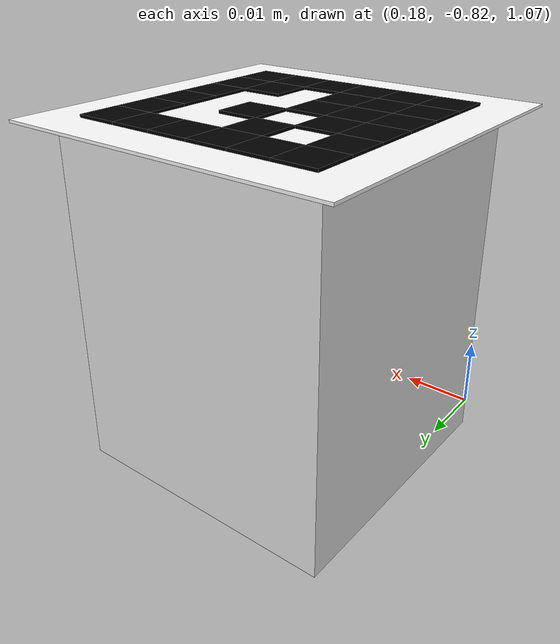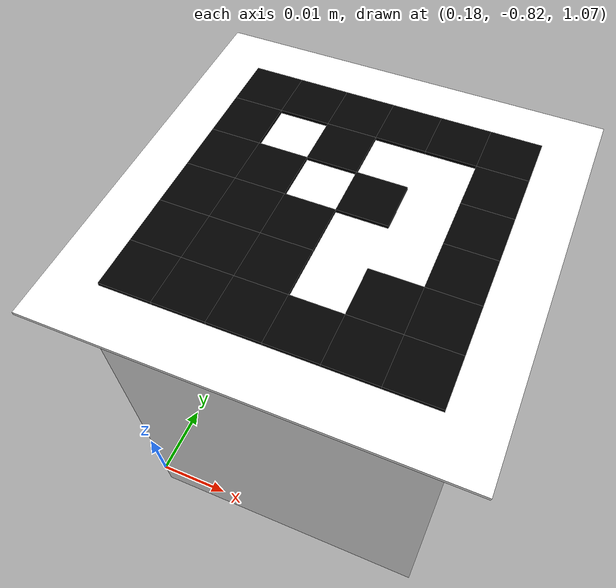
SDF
<sdf version="1.6">
 <world name="default">
  <plugin filename="ignition-gazebo-physics-system" name="ignition::gazebo::systems::Physics"/>
  <plugin filename="ignition-gazebo-user-commands-system" name="ignition::gazebo::systems::UserCommands"/>
  <plugin filename="ignition-gazebo-scene-broadcaster-system" name="ignition::gazebo::systems::SceneBroadcaster"/>
  <plugin filename="ignition-gazebo-sensors-system" name="ignition::gazebo::systems::Sensors">
   <render_engine>ogre2</render_engine>
  </plugin>
  <include><uri>https://fuel.gazebosim.org/1.0/OpenRobotics/models/Ground Plane</uri></include>
  <include><uri>https://fuel.gazebosim.org/1.0/OpenRobotics/models/Sun</uri></include>
  <model name="aruco_cube">
   <pose>0.2 -0.8 1.0908 0 0 0</pose>
   <static>false</static>
   <link name="link">
    <inertial>
     <mass>0.01</mass>
     <inertia><ixx>1e-6</ixx><ixy>0</ixy><ixz>0</ixz><iyy>1e-6</iyy><iyz>0</iyz><izz>1e-6</izz></inertia>
    </inertial>
    <visual name="body">
     <geometry><box><size>0.04 0.04 0.05</size></box></geometry>
     <material><ambient>0.9 0.9 0.9 1</ambient><diffuse>0.9 0.9 0.9 1</diffuse></material>
    </visual>
    <visual name="marker_plate">
     <pose>0 0 0.0252 0 0 0</pose>
     <geometry><box><size>0.0480 0.0480 0.0004</size></box></geometry>
     <material><ambient>1 1 1 1</ambient><diffuse>1 1 1 1</diffuse><specular>0 0 0 1</specular></material>
    </visual>
    <visual name="aruco_0_0">
     <pose>-0.0150 0.0150 0.0256 0 0 0</pose>
     <geometry><box><size>0.0060 0.0060 0.0004</size></box></geometry>
     <material><ambient>0 0 0 1</ambient><diffuse>0 0 0 1</diffuse><specular>0 0 0 1</specular></material>
    </visual>
    <visual name="aruco_0_1">
     <pose>-0.0090 0.0150 0.0256 0 0 0</pose>
     <geometry><box><size>0.0060 0.0060 0.0004</size></box></geometry>
     <material><ambient>0 0 0 1</ambient><diffuse>0 0 0 1</diffuse><specular>0 0 0 1</specular></material>
    </visual>
    <visual name="aruco_0_2">
     <pose>-0.0030 0.0150 0.0256 0 0 0</pose>
     <geometry><box><size>0.0060 0.0060 0.0004</size></box></geometry>
     <material><ambient>0 0 0 1</ambient><diffuse>0 0 0 1</diffuse><specular>0 0 0 1</specular></material>
    </visual>
    <visual name="aruco_0_3">
     <pose>0.0030 0.0150 0.0256 0 0 0</pose>
     <geometry><box><size>0.0060 0.0060 0.0004</size></box></geometry>
     <material><ambient>0 0 0 1</ambient><diffuse>0 0 0 1</diffuse><specular>0 0 0 1</specular></material>
    </visual>
    <visual name="aruco_0_4">
     <pose>0.0090 0.0150 0.0256 0 0 0</pose>
     <geometry><box><size>0.0060 0.0060 0.0004</size></box></geometry>
     <material><ambient>0 0 0 1</ambient><diffuse>0 0 0 1</diffuse><specular>0 0 0 1</specular></material>
    </visual>
    <visual name="aruco_0_5">
     <pose>0.0150 0.0150 0.0256 0 0 0</pose>
     <geometry><box><size>0.0060 0.0060 0.0004</size></box></geometry>
     <material><ambient>0 0 0 1</ambient><diffuse>0 0 0 1</diffuse><specular>0 0 0 1</specular></material>
    </visual>
    <visual name="aruco_1_0">
     <pose>-0.0150 0.0090 0.0256 0 0 0</pose>
     <geometry><box><size>0.0060 0.0060 0.0004</size></box></geometry>
     <material><ambient>0 0 0 1</ambient><diffuse>0 0 0 1</diffuse><specular>0 0 0 1</specular></material>
    </visual>
    <visual name="aruco_1_2">
     <pose>-0.0030 0.0090 0.0256 0 0 0</pose>
     <geometry><box><size>0.0060 0.0060 0.0004</size></box></geometry>
     <material><ambient>0 0 0 1</ambient><diffuse>0 0 0 1</diffuse><specular>0 0 0 1</specular></material>
    </visual>
    <visual name="aruco_1_5">
     <pose>0.0150 0.0090 0.0256 0 0 0</pose>
     <geometry><box><size>0.0060 0.0060 0.0004</size></box></geometry>
     <material><ambient>0 0 0 1</ambient><diffuse>0 0 0 1</diffuse><specular>0 0 0 1</specular></material>
    </visual>
    <visual name="aruco_2_0">
     <pose>-0.0150 0.0030 0.0256 0 0 0</pose>
     <geometry><box><size>0.0060 0.0060 0.0004</size></box></geometry>
     <material><ambient>0 0 0 1</ambient><diffuse>0 0 0 1</diffuse><specular>0 0 0 1</specular></material>
    </visual>
    <visual name="aruco_2_1">
     <pose>-0.0090 0.0030 0.0256 0 0 0</pose>
     <geometry><box><size>0.0060 0.0060 0.0004</size></box></geometry>
     <material><ambient>0 0 0 1</ambient><diffuse>0 0 0 1</diffuse><specular>0 0 0 1</specular></material>
    </visual>
    <visual name="aruco_2_3">
     <pose>0.0030 0.0030 0.0256 0 0 0</pose>
     <geometry><box><size>0.0060 0.0060 0.0004</size></box></geometry>
     <material><ambient>0 0 0 1</ambient><diffuse>0 0 0 1</diffuse><specular>0 0 0 1</specular></material>
    </visual>
    <visual name="aruco_2_5">
     <pose>0.0150 0.0030 0.0256 0 0 0</pose>
     <geometry><box><size>0.0060 0.0060 0.0004</size></box></geometry>
     <material><ambient>0 0 0 1</ambient><diffuse>0 0 0 1</diffuse><specular>0 0 0 1</specular></material>
    </visual>
    <visual name="aruco_3_0">
     <pose>-0.0150 -0.0030 0.0256 0 0 0</pose>
     <geometry><box><size>0.0060 0.0060 0.0004</size></box></geometry>
     <material><ambient>0 0 0 1</ambient><diffuse>0 0 0 1</diffuse><specular>0 0 0 1</specular></material>
    </visual>
    <visual name="aruco_3_1">
     <pose>-0.0090 -0.0030 0.0256 0 0 0</pose>
     <geometry><box><size>0.0060 0.0060 0.0004</size></box></geometry>
     <material><ambient>0 0 0 1</ambient><diffuse>0 0 0 1</diffuse><specular>0 0 0 1</specular></material>
    </visual>
    <visual name="aruco_3_2">
     <pose>-0.0030 -0.0030 0.0256 0 0 0</pose>
     <geometry><box><size>0.0060 0.0060 0.0004</size></box></geometry>
     <material><ambient>0 0 0 1</ambient><diffuse>0 0 0 1</diffuse><specular>0 0 0 1</specular></material>
    </visual>
    <visual name="aruco_3_5">
     <pose>0.0150 -0.0030 0.0256 0 0 0</pose>
     <geometry><box><size>0.0060 0.0060 0.0004</size></box></geometry>
     <material><ambient>0 0 0 1</ambient><diffuse>0 0 0 1</diffuse><specular>0 0 0 1</specular></material>
    </visual>
    <visual name="aruco_4_0">
     <pose>-0.0150 -0.0090 0.0256 0 0 0</pose>
     <geometry><box><size>0.0060 0.0060 0.0004</size></box></geometry>
     <material><ambient>0 0 0 1</ambient><diffuse>0 0 0 1</diffuse><specular>0 0 0 1</specular></material>
    </visual>
    <visual name="aruco_4_1">
     <pose>-0.0090 -0.0090 0.0256 0 0 0</pose>
     <geometry><box><size>0.0060 0.0060 0.0004</size></box></geometry>
     <material><ambient>0 0 0 1</ambient><diffuse>0 0 0 1</diffuse><specular>0 0 0 1</specular></material>
    </visual>
    <visual name="aruco_4_2">
     <pose>-0.0030 -0.0090 0.0256 0 0 0</pose>
     <geometry><box><size>0.0060 0.0060 0.0004</size></box></geometry>
     <material><ambient>0 0 0 1</ambient><diffuse>0 0 0 1</diffuse><specular>0 0 0 1</specular></material>
    </visual>
    <visual name="aruco_4_4">
     <pose>0.0090 -0.0090 0.0256 0 0 0</pose>
     <geometry><box><size>0.0060 0.0060 0.0004</size></box></geometry>
     <material><ambient>0 0 0 1</ambient><diffuse>0 0 0 1</diffuse><specular>0 0 0 1</specular></material>
    </visual>
    <visual name="aruco_4_5">
     <pose>0.0150 -0.0090 0.0256 0 0 0</pose>
     <geometry><box><size>0.0060 0.0060 0.0004</size></box></geometry>
     <material><ambient>0 0 0 1</ambient><diffuse>0 0 0 1</diffuse><specular>0 0 0 1</specular></material>
    </visual>
    <visual name="aruco_5_0">
     <pose>-0.0150 -0.0150 0.0256 0 0 0</pose>
     <geometry><box><size>0.0060 0.0060 0.0004</size></box></geometry>
     <material><ambient>0 0 0 1</ambient><diffuse>0 0 0 1</diffuse><specular>0 0 0 1</specular></material>
    </visual>
    <visual name="aruco_5_1">
     <pose>-0.0090 -0.0150 0.0256 0 0 0</pose>
     <geometry><box><size>0.0060 0.0060 0.0004</size></box></geometry>
     <material><ambient>0 0 0 1</ambient><diffuse>0 0 0 1</diffuse><specular>0 0 0 1</specular></material>
    </visual>
    <visual name="aruco_5_2">
     <pose>-0.0030 -0.0150 0.0256 0 0 0</pose>
     <geometry><box><size>0.0060 0.0060 0.0004</size></box></geometry>
     <material><ambient>0 0 0 1</ambient><diffuse>0 0 0 1</diffuse><specular>0 0 0 1</specular></material>
    </visual>
    <visual name="aruco_5_3">
     <pose>0.0030 -0.0150 0.0256 0 0 0</pose>
     <geometry><box><size>0.0060 0.0060 0.0004</size></box></geometry>
     <material><ambient>0 0 0 1</ambient><diffuse>0 0 0 1</diffuse><specular>0 0 0 1</specular></material>
    </visual>
    <visual name="aruco_5_4">
     <pose>0.0090 -0.0150 0.0256 0 0 0</pose>
     <geometry><box><size>0.0060 0.0060 0.0004</size></box></geometry>
     <material><ambient>0 0 0 1</ambient><diffuse>0 0 0 1</diffuse><specular>0 0 0 1</specular></material>
    </visual>
    <visual name="aruco_5_5">
     <pose>0.0150 -0.0150 0.0256 0 0 0</pose>
     <geometry><box><size>0.0060 0.0060 0.0004</size></box></geometry>
     <material><ambient>0 0 0 1</ambient><diffuse>0 0 0 1</diffuse><specular>0 0 0 1</specular></material>
    </visual>
    <collision name="collision">
     <geometry><box><size>0.04 0.04 0.05</size></box></geometry>
     <surface>
      <friction>
       <ode><mu>1000.0</mu><mu2>1000.0</mu2><slip1>0.0</slip1><slip2>0.0</slip2><fdir1>0 0 1</fdir1></ode>
       <torsional>
        <coefficient>100.0</coefficient>
        <use_patch_radius>true</use_patch_radius>
        <patch_radius>0.1</patch_radius>
        <surface_radius>0.05</surface_radius>
       </torsional>
      </friction>
      <contact><ode><kp>1e8</kp><kd>1000</kd><max_vel>0.0</max_vel><min_depth>0.002</min_depth></ode></contact>
      <bounce><restitution_coefficient>0</restitution_coefficient><threshold>0</threshold></bounce>
     </surface>
    </collision>
   </link>
  </model>
  <physics type="ode">
   <max_step_size>0.001</max_step_size>
   <real_time_factor>1</real_time_factor>
   <real_time_update_rate>1000</real_time_update_rate>
   <gravity>0 0 -9.81</gravity>
  </physics>
 </world>
</sdf>
